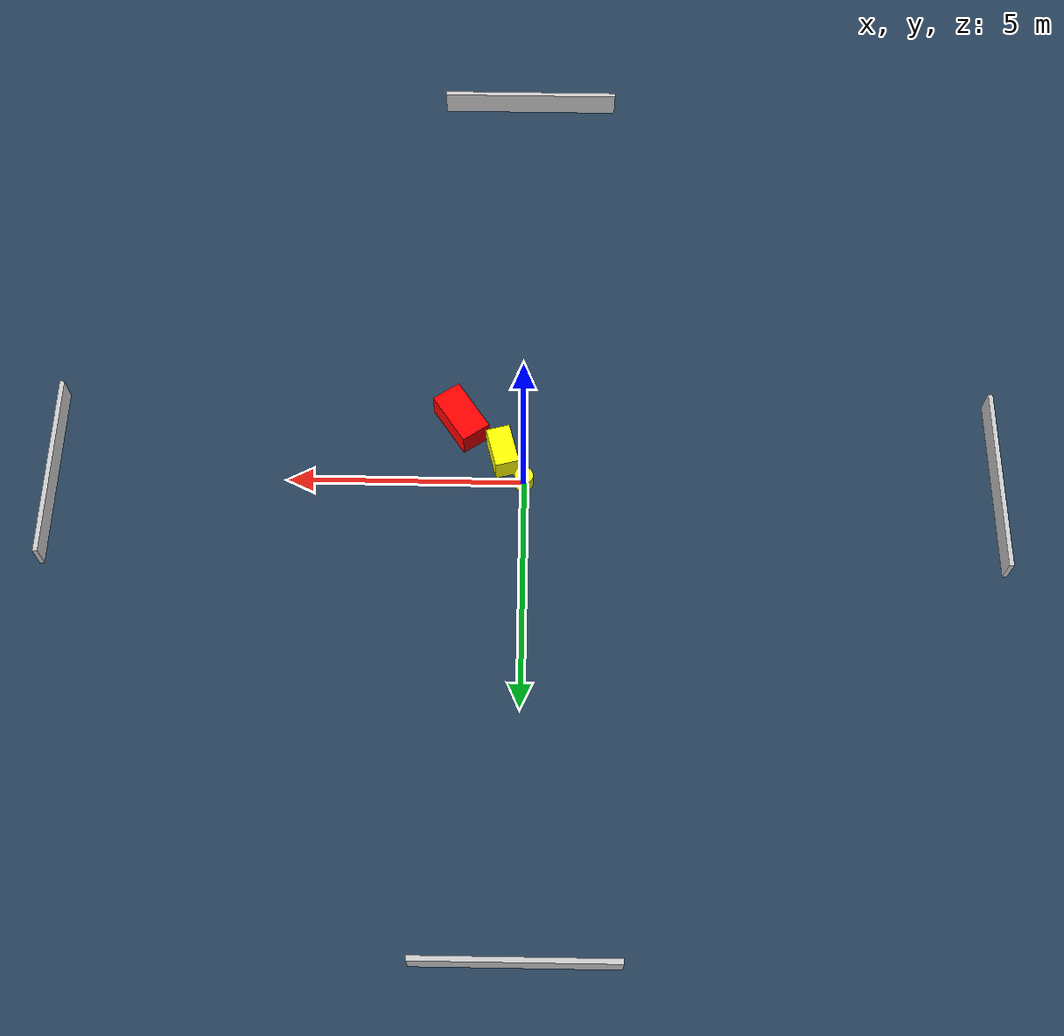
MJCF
<?xml version="1.0" ?>
<mujoco model="generated_environment">
  <option timestep="0.01" integrator="RK4" cone="elliptic"/>
  <default>
    <geom density="1"/>
  </default>
  <asset>
    <texture builtin="gradient" height="3072" name="skybox" rgb1="0.3 0.5 0.7" rgb2="0 0 0" type="skybox" width="512"/>
    <texture builtin="checker" height="300" name="groundplane" rgb1="0.2 0.3 0.4" rgb2="0.1 0.2 0.3" type="2d" width="300"/>
    <material name="groundplane" reflectance="0.2" texrepeat="5 5" texture="groundplane"/>
  </asset>
  <worldbody>
    <light dir="0 0 -1" directional="true" pos="0 0 1.5"/>
    <geom condim="3" friction="0.5 0.005 0.001" material="groundplane" name="floor" pos="0 0 0" size="0 0 0.05" type="plane"/>
    <body name="walls">
      <geom name="wall_1" condim="4" pos="-10.0 0.0 0.3" rgba="0.800000011920929 0.800000011920929 0.800000011920929 1.0" size="0.05 2.0 0.3" type="box"/>
      <geom name="wall_2" condim="4" pos="10.0 0.0 0.3" rgba="0.800000011920929 0.800000011920929 0.800000011920929 1.0" size="0.05 2.0 0.3" type="box"/>
      <geom name="wall_3" condim="4" pos="0.0 -10.0 0.3" rgba="0.800000011920929 0.800000011920929 0.800000011920929 1.0" size="2.0 0.05 0.3" type="box"/>
      <geom name="wall_4" condim="4" pos="0.0 10.0 0.3" rgba="0.800000011920929 0.800000011920929 0.800000011920929 1.0" size="2.0 0.05 0.3" type="box"/>
    </body>
    <body name="robot">
      <joint name="joint_x" type="slide" pos="0 0 0" axis="1 0 0"/>
      <joint name="joint_y" type="slide" pos="0 0 0" axis="0 1 0"/>
      <geom name="robot" type="cylinder" pos="0.0 0.0 0.2" size="0.2 0.2 0.0" mass="5.0" friction="1.0 0.005 0.0001" condim="4" rgba="1.0 1.0 0.0 1.0"/>
    </body>
    <body name="obstacle_1_movable">
      <geom name="obstacle_1_movable" condim="4" pos="0.4606967936192171 -0.603702325726606 0.3" euler="0 0 194.90423208505456" friction="0.0 0.005 0.001" rgba="1.0 1.0 0.0 1.0" size="0.2555697181757171 0.43729871909020374 0.3" type="box" mass="0.1"/>
      <joint type="free"/>
    </body>
    <body name="obstacle_2_static">
      <geom name="obstacle_2_static" condim="4" pos="1.365105909730012 -1.3998849531826705 0.3" euler="0 0 214.29393032276502" friction="0.0 0.005 0.001" rgba="1.0 0.0 0.0 1.0" size="0.32733720529551497 0.6047522246258183 0.3" type="box"/>
    </body>
  </worldbody>
  <actuator>
    <motor name="actuator_x" joint="joint_x" gear="1" ctrlrange="-1 1"/>
    <motor name="actuator_y" joint="joint_y" gear="1" ctrlrange="-1 1"/>
  </actuator>
</mujoco>
